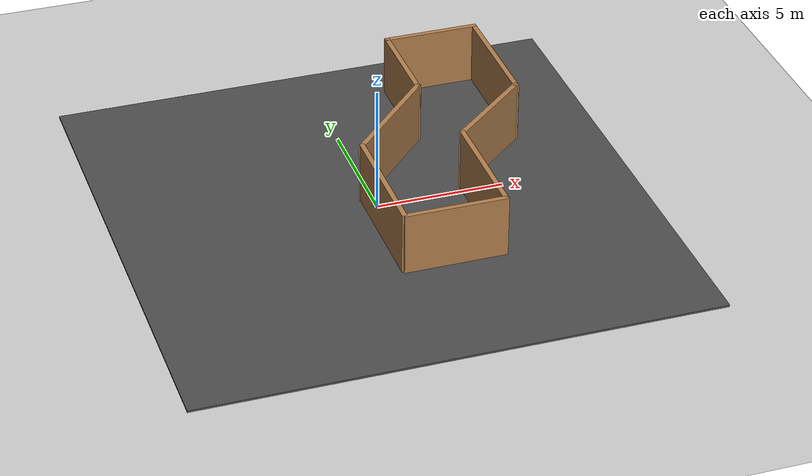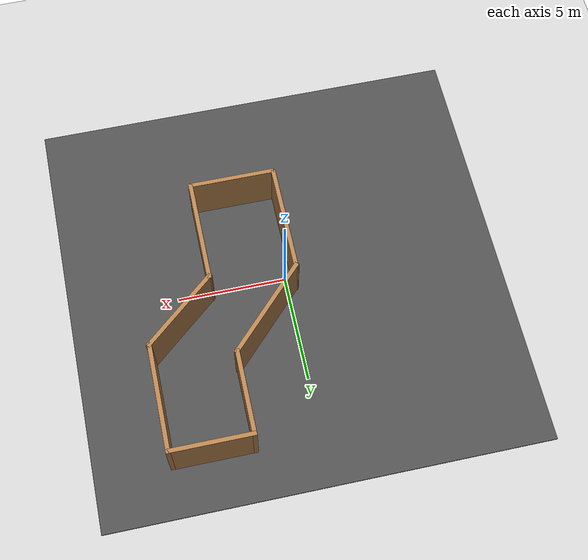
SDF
<?xml version="1.0"?>
<sdf version='1.4'>
  <world name='default'>
    <light name='sun' type='directional'>
      <cast_shadows>1</cast_shadows>
      <pose>0 0 10 0 -0 0</pose>
      <diffuse>0.8 0.8 0.8 1</diffuse>
      <specular>0.2 0.2 0.2 1</specular>
      <attenuation>
        <range>1000</range>
        <constant>0.9</constant>
        <linear>0.01</linear>
        <quadratic>0.001</quadratic>
      </attenuation>
      <direction>-0.5 0.1 -0.9</direction>
    </light>
    <model name='ground_plane'>
      <static>1</static>
      <link name='link'>
        <collision name='collision'>
          <geometry>
            <plane>
              <normal>0 0 1</normal>
              <size>100 100</size>
            </plane>
          </geometry>
          <surface>
            <friction>
              <ode>
                <mu>100</mu>
                <mu2>50</mu2>
              </ode>
            </friction>
            <bounce/>
            <contact>
              <ode/>
            </contact>
          </surface>
          <max_contacts>10</max_contacts>
        </collision>
        <visual name='visual'>
          <cast_shadows>0</cast_shadows>
          <geometry>
            <plane>
              <normal>0 0 1</normal>
              <size>100 100</size>
            </plane>
          </geometry>
          <material>
            <script>
              <uri>file://media/materials/scripts/gazebo.material</uri>
              <name>Gazebo/Grey</name>
            </script>
          </material>
        </visual>
        <velocity_decay>
          <linear>0</linear>
          <angular>0</angular>
        </velocity_decay>
        <self_collide>0</self_collide>
        <kinematic>0</kinematic>
        <gravity>1</gravity>
      </link>
    </model>
    <physics type='ode'>
      <max_step_size>0.001</max_step_size>
      <real_time_factor>1</real_time_factor>
      <real_time_update_rate>1000</real_time_update_rate>
      <gravity>0 0 -9.8</gravity>
    </physics>
    <scene>
      <ambient>0.4 0.4 0.4 1</ambient>
      <background>0.7 0.7 0.7 1</background>
      <shadows>1</shadows>
    </scene>
    <spherical_coordinates>
      <surface_model>EARTH_WGS84</surface_model>
      <latitude_deg>0</latitude_deg>
      <longitude_deg>0</longitude_deg>
      <elevation>0</elevation>
      <heading_deg>0</heading_deg>
    </spherical_coordinates>
    <model name='bended_corridor'>
    <link name='Wall_0'>
      <collision name='Wall_0_Collision'>
        <geometry>
          <box>
            <size>5.08355 0.2 2.5</size>
          </box>
        </geometry>
        <pose>0 0 1.25 0 -0 0</pose>
      </collision>
      <visual name='Wall_0_Visual'>
        <pose>0 0 1.25 0 -0 0</pose>
        <geometry>
          <box>
            <size>5.08355 0.2 2.5</size>
          </box>
        </geometry>
        <material>
          <script>
            <uri>file://media/materials/scripts/gazebo.material</uri>
            <name>Gazebo/WoodFloor</name>
          </script>
        </material>
      </visual>
      <velocity_decay>
        <linear>0</linear>
        <angular>0</angular>
      </velocity_decay>
      <pose>-0.4 -1.90823 0 0 -0 1.5708</pose>
    </link>
    <link name='Wall_1'>
      <collision name='Wall_1_Collision'>
        <geometry>
          <box>
            <size>5.01946 0.2 2.5</size>
          </box>
        </geometry>
        <pose>0 0 1.25 0 -0 0</pose>
      </collision>
      <visual name='Wall_1_Visual'>
        <pose>0 0 1.25 0 -0 0</pose>
        <geometry>
          <box>
            <size>5.01946 0.2 2.5</size>
          </box>
        </geometry>
        <material>
          <script>
            <uri>file://media/materials/scripts/gazebo.material</uri>
            <name>Gazebo/WoodFloor</name>
          </script>
        </material>
      </visual>
      <velocity_decay>
        <linear>0</linear>
        <angular>0</angular>
      </velocity_decay>
      <pose>1.26831 2.27238 0 0 -0 0.806093</pose>
    </link>
    <link name='Wall_2'>
      <collision name='Wall_2_Collision'>
        <geometry>
          <box>
            <size>3.94517 0.2 2.5</size>
          </box>
        </geometry>
        <pose>0 0 1.25 0 -0 0</pose>
      </collision>
      <visual name='Wall_2_Visual'>
        <pose>0 0 1.25 0 -0 0</pose>
        <geometry>
          <box>
            <size>3.94517 0.2 2.5</size>
          </box>
        </geometry>
        <material>
          <script>
            <uri>file://media/materials/scripts/gazebo.material</uri>
            <name>Gazebo/WoodFloor</name>
          </script>
        </material>
      </visual>
      <velocity_decay>
        <linear>0</linear>
        <angular>0</angular>
      </velocity_decay>
      <pose>2.93662 5.8838 0 0 -0 1.5708</pose>
    </link>
    <link name='Wall_3'>
      <collision name='Wall_3_Collision'>
        <geometry>
          <box>
            <size>3.83817 0.2 2.5</size>
          </box>
        </geometry>
        <pose>0 0 1.25 0 -0 0</pose>
      </collision>
      <visual name='Wall_3_Visual'>
        <pose>0 0 1.25 0 -0 0</pose>
        <geometry>
          <box>
            <size>3.83817 0.2 2.5</size>
          </box>
        </geometry>
        <material>
          <script>
            <uri>file://media/materials/scripts/gazebo.material</uri>
            <name>Gazebo/WoodFloor</name>
          </script>
        </material>
      </visual>
      <velocity_decay>
        <linear>0</linear>
        <angular>0</angular>
      </velocity_decay>
      <pose>4.75571 7.75638 0 0 -0 0</pose>
    </link>
    <link name='Wall_4'>
      <collision name='Wall_4_Collision'>
        <geometry>
          <box>
            <size>5.01523 0.2 2.5</size>
          </box>
        </geometry>
        <pose>0 0 1.25 0 -0 0</pose>
      </collision>
      <visual name='Wall_4_Visual'>
        <pose>0 0 1.25 0 -0 0</pose>
        <geometry>
          <box>
            <size>5.01523 0.2 2.5</size>
          </box>
        </geometry>
        <material>
          <script>
            <uri>file://media/materials/scripts/gazebo.material</uri>
            <name>Gazebo/WoodFloor</name>
          </script>
        </material>
      </visual>
      <velocity_decay>
        <linear>0</linear>
        <angular>0</angular>
      </velocity_decay>
      <pose>6.57479 5.34877 0 0 0 -1.5708</pose>
    </link>
    <link name='Wall_5'>
      <collision name='Wall_5_Collision'>
        <geometry>
          <box>
            <size>4.29705 0.2 2.5</size>
          </box>
        </geometry>
        <pose>0 0 1.25 0 -0 0</pose>
      </collision>
      <visual name='Wall_5_Visual'>
        <pose>0 0 1.25 0 -0 0</pose>
        <geometry>
          <box>
            <size>4.29705 0.2 2.5</size>
          </box>
        </geometry>
        <material>
          <script>
            <uri>file://media/materials/scripts/gazebo.material</uri>
            <name>Gazebo/WoodFloor</name>
          </script>
        </material>
      </visual>
      <velocity_decay>
        <linear>0</linear>
        <angular>0</angular>
      </velocity_decay>
      <pose>5.02322 1.6036 0 0 0 -2.43013</pose>
    </link>
    <link name='Wall_6'>
      <collision name='Wall_6_Collision'>
        <geometry>
          <box>
            <size>4.90822 0.2 2.5</size>
          </box>
        </geometry>
        <pose>0 0 1.25 0 -0 0</pose>
      </collision>
      <visual name='Wall_6_Visual'>
        <pose>0 0 1.25 0 -0 0</pose>
        <geometry>
          <box>
            <size>4.90822 0.2 2.5</size>
          </box>
        </geometry>
        <material>
          <script>
            <uri>file://media/materials/scripts/gazebo.material</uri>
            <name>Gazebo/WoodFloor</name>
          </script>
        </material>
      </visual>
      <velocity_decay>
        <linear>0</linear>
        <angular>0</angular>
      </velocity_decay>
      <pose>3.47165 -2.08807 0 0 0 -1.5708</pose>
    </link>
    <link name='Wall_7'>
      <collision name='Wall_7_Collision'>
        <geometry>
          <box>
            <size>3.99868 0.2 2.5</size>
          </box>
        </geometry>
        <pose>0 0 1.25 0 -0 0</pose>
      </collision>
      <visual name='Wall_7_Visual'>
        <pose>0 0 1.25 0 -0 0</pose>
        <geometry>
          <box>
            <size>3.99868 0.2 2.5</size>
          </box>
        </geometry>
        <material>
          <script>
            <uri>file://media/materials/scripts/gazebo.material</uri>
            <name>Gazebo/WoodFloor</name>
          </script>
        </material>
      </visual>
      <velocity_decay>
        <linear>0</linear>
        <angular>0</angular>
      </velocity_decay>
      <pose>1.57231 -4.44219 0 0 -0 3.14159</pose>
    </link>
    <static>1</static>
  </model>
    <model name='asphalt_plane'>
      <static>1</static>
      <link name='link'>
        <collision name='collision'>
          <geometry>
            <box>
              <size>20 20 0.1</size>
            </box>
          </geometry>
          <max_contacts>10</max_contacts>
          <surface>
            <bounce/>
            <friction>
              <ode/>
            </friction>
            <contact>
              <ode/>
            </contact>
          </surface>
        </collision>
        <visual name='visual'>
          <cast_shadows>0</cast_shadows>
          <geometry>
            <box>
              <size>20 20 0.1</size>
            </box>
          </geometry>
          <material>
            <script>
              <uri>model://asphalt_plane/materials/scripts</uri>
              <uri>model://asphalt_plane/materials/textures</uri>
              <name>vrc/asphalt</name>
            </script>
          </material>
        </visual>
        <velocity_decay>
          <linear>0</linear>
          <angular>0</angular>
        </velocity_decay>
        <self_collide>0</self_collide>
        <kinematic>0</kinematic>
        <gravity>1</gravity>
      </link>
      <pose>0 0 0 0 -0 0</pose>
    </model>
    <gui fullscreen='0'>
      <camera name='user_camera'>
        <pose>-4.10065 2.47922 25.63 -1e-06 1.5418 -1.332</pose>
        <view_controller>orbit</view_controller>
      </camera>
    </gui>
  </world>
</sdf>
